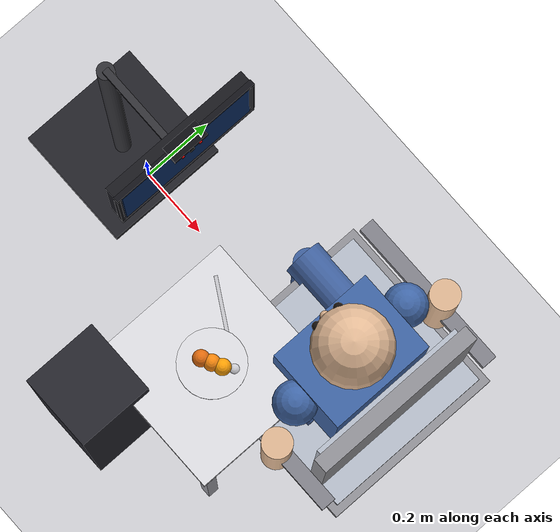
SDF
<?xml version="1.0" ?>

<sdf version="1.9">
<world name="point_goal_scene">

  <!-- ════════════════════ PHYSICS ════════════════════ -->
  <physics name="default_physics" default="true" type="ode">
    <max_step_size>0.01</max_step_size>
    <real_time_factor>1.0</real_time_factor>
    <real_time_update_rate>100</real_time_update_rate>
    <ode>
      <solver><type>quick</type><iters>50</iters><sor>1.3</sor></solver>
      <constraints>
        <cfm>0.0</cfm><erp>0.2</erp>
        <contact_max_correcting_vel>100</contact_max_correcting_vel>
        <contact_surface_layer>0.001</contact_surface_layer>
      </constraints>
    </ode>
  </physics>

  <!-- ════════════════════ PLUGINS ════════════════════ -->
  <plugin filename="gz-sim-physics-system"   name="gz::sim::systems::Physics"/>
  <plugin filename="gz-sim-sensors-system"   name="gz::sim::systems::Sensors">
    <render_engine>ogre2</render_engine>
  </plugin>
  <plugin filename="gz-sim-scene-broadcaster-system" name="gz::sim::systems::SceneBroadcaster"/>
  <plugin filename="gz-sim-user-commands-system"     name="gz::sim::systems::UserCommands"/>

  <!-- ════════════════════ LIGHTING ════════════════════ -->
  <light type="directional" name="ceiling_main">
    <cast_shadows>false</cast_shadows>
    <pose>0.4 0 4.0 0 0 0</pose>
    <diffuse>0.90 0.92 0.92 1</diffuse>
    <specular>0.22 0.22 0.22 1</specular>
    <direction>0.05 0.0 -1.0</direction>
    <intensity>1.10</intensity>
  </light>

  <!-- Fill: patient-side (arm side now -Y) -->
  <light type="point" name="patient_fill">
    <pose>0.80 -0.30 2.2 0 0 0</pose>
    <diffuse>0.55 0.55 0.58 1</diffuse>
    <specular>0.04 0.04 0.04 1</specular>
    <attenuation>
      <range>5</range><constant>0.45</constant>
      <linear>0.04</linear><quadratic>0.002</quadratic>
    </attenuation>
    <cast_shadows>false</cast_shadows>
  </light>

  <!-- Fill: arm + food tray area -->
  <light type="point" name="arm_fill">
    <pose>0.50 -0.60 2.0 0 0 0</pose>
    <diffuse>0.40 0.42 0.42 1</diffuse>
    <specular>0.03 0.03 0.03 1</specular>
    <attenuation>
      <range>4</range><constant>0.55</constant>
      <linear>0.05</linear><quadratic>0.002</quadratic>
    </attenuation>
    <cast_shadows>false</cast_shadows>
  </light>

  <!-- ════════════════════ GROUND ════════════════════ -->
  <model name="ground_plane">
    <static>true</static>
    <link name="link">
      <collision name="collision">
        <geometry><plane><normal>0 0 1</normal><size>20 20</size></plane></geometry>
        <surface><friction><ode><mu>1.0</mu><mu2>1.0</mu2></ode></friction></surface>
      </collision>
      <visual name="visual">
        <geometry><plane><normal>0 0 1</normal><size>20 20</size></plane></geometry>
        <material>
          <ambient>0.82 0.82 0.84 1</ambient>
          <diffuse>0.82 0.82 0.84 1</diffuse>
        </material>
      </visual>
    </link>
  </model>

  <model name="robot_pedestal">
    <static>true</static>
    <pose>0.40 -0.50 0 0 0 0</pose>
    <link name="link">
      <pose>0 0 0.425 0 0 0</pose>
      <collision name="collision">
        <geometry><box><size>0.20 0.20 0.85</size></box></geometry>
      </collision>
      <visual name="visual">
        <geometry><box><size>0.20 0.20 0.85</size></box></geometry>
        <material>
          <ambient>0.15 0.15 0.18 1</ambient>
          <diffuse>0.15 0.15 0.18 1</diffuse>
          <specular>0.12 0.12 0.12 1</specular>
        </material>
      </visual>
    </link>
  </model>

  <!-- ════════════════════════════════════════════════════════════════
       PATIENT CHAIR  at (0.75, 0)  — unchanged
       ════════════════════════════════════════════════════════════════ -->
  <model name="patient_chair">
    <static>true</static>
    <pose>0.75 0 0 0 0 0</pose>
    <link name="link">

      <collision name="seat_col">
        <pose>0 0 0.44 0 0 0</pose>
        <geometry><box><size>0.50 0.50 0.040</size></box></geometry>
      </collision>
      <visual name="seat_frame">
        <pose>0 0 0.44 0 0 0</pose>
        <geometry><box><size>0.50 0.50 0.040</size></box></geometry>
        <material><ambient>0.58 0.58 0.60 1</ambient><diffuse>0.58 0.58 0.60 1</diffuse><specular>0.06 0.06 0.06 1</specular></material>
      </visual>
      <visual name="seat_cushion">
        <pose>0 0 0.472 0 0 0</pose>
        <geometry><box><size>0.46 0.46 0.024</size></box></geometry>
        <material><ambient>0.72 0.75 0.80 1</ambient><diffuse>0.72 0.75 0.80 1</diffuse></material>
      </visual>
      <collision name="backrest_col">
        <pose>0.15 0 0.70 0 0 0</pose>
        <geometry><box><size>0.040 0.46 0.54</size></box></geometry>
      </collision>
      <visual name="backrest_frame">
        <pose>0.15 0 0.70 0 0 0</pose>
        <geometry><box><size>0.040 0.46 0.54</size></box></geometry>
        <material><ambient>0.58 0.58 0.60 1</ambient><diffuse>0.58 0.58 0.60 1</diffuse></material>
      </visual>
      <visual name="backrest_cushion">
        <pose>0.128 0 0.70 0 0 0</pose>
        <geometry><box><size>0.020 0.42 0.50</size></box></geometry>
        <material><ambient>0.72 0.75 0.80 1</ambient><diffuse>0.72 0.75 0.80 1</diffuse></material>
      </visual>
      <visual name="armrest_left">
        <pose>0 0.255 0.645 0 0 0</pose>
        <geometry><box><size>0.44 0.040 0.028</size></box></geometry>
        <material><ambient>0.52 0.52 0.55 1</ambient><diffuse>0.52 0.52 0.55 1</diffuse></material>
      </visual>
      <visual name="armrest_right">
        <pose>0 -0.255 0.645 0 0 0</pose>
        <geometry><box><size>0.44 0.040 0.028</size></box></geometry>
        <material><ambient>0.52 0.52 0.55 1</ambient><diffuse>0.52 0.52 0.55 1</diffuse></material>
      </visual>
      <visual name="leg_fl"><pose>-0.20  0.20 0.215 0 0 0</pose><geometry><cylinder><radius>0.018</radius><length>0.43</length></cylinder></geometry><material><ambient>0.60 0.62 0.62 1</ambient><diffuse>0.60 0.62 0.62 1</diffuse><specular>0.30 0.30 0.30 1</specular></material></visual>
      <visual name="leg_fr"><pose>-0.20 -0.20 0.215 0 0 0</pose><geometry><cylinder><radius>0.018</radius><length>0.43</length></cylinder></geometry><material><ambient>0.60 0.62 0.62 1</ambient><diffuse>0.60 0.62 0.62 1</diffuse><specular>0.30 0.30 0.30 1</specular></material></visual>
      <visual name="leg_bl"><pose> 0.20  0.20 0.215 0 0 0</pose><geometry><cylinder><radius>0.018</radius><length>0.43</length></cylinder></geometry><material><ambient>0.60 0.62 0.62 1</ambient><diffuse>0.60 0.62 0.62 1</diffuse><specular>0.30 0.30 0.30 1</specular></material></visual>
      <visual name="leg_br"><pose> 0.20 -0.20 0.215 0 0 0</pose><geometry><cylinder><radius>0.018</radius><length>0.43</length></cylinder></geometry><material><ambient>0.60 0.62 0.62 1</ambient><diffuse>0.60 0.62 0.62 1</diffuse><specular>0.30 0.30 0.30 1</specular></material></visual>

    </link>
  </model>

  <model name="patient">
    <static>true</static>
    <pose>0.75 0 0 0 0 0</pose>
    <link name="link">

      <visual name="thigh_left"><pose>-0.12  0.11 0.46 0 1.5708 0</pose><geometry><cylinder><radius>0.052</radius><length>0.32</length></cylinder></geometry><material><ambient>0.25 0.38 0.62 1</ambient><diffuse>0.25 0.38 0.62 1</diffuse></material></visual>
      <visual name="thigh_right"><pose>-0.12 -0.11 0.46 0 1.5708 0</pose><geometry><cylinder><radius>0.052</radius><length>0.32</length></cylinder></geometry><material><ambient>0.25 0.38 0.62 1</ambient><diffuse>0.25 0.38 0.62 1</diffuse></material></visual>
      <visual name="shin_left"><pose>-0.26  0.11 0.25 0 0 0</pose><geometry><cylinder><radius>0.038</radius><length>0.42</length></cylinder></geometry><material><ambient>0.25 0.38 0.62 1</ambient><diffuse>0.25 0.38 0.62 1</diffuse></material></visual>
      <visual name="shin_right"><pose>-0.26 -0.11 0.25 0 0 0</pose><geometry><cylinder><radius>0.038</radius><length>0.42</length></cylinder></geometry><material><ambient>0.25 0.38 0.62 1</ambient><diffuse>0.25 0.38 0.62 1</diffuse></material></visual>

      <visual name="torso">
        <pose>0 0 0.74 0 0 0</pose>
        <geometry><box><size>0.22 0.28 0.40</size></box></geometry>
        <material><ambient>0.25 0.40 0.65 1</ambient><diffuse>0.25 0.40 0.65 1</diffuse></material>
      </visual>
      <visual name="shoulder_l"><pose>0  0.17 0.88 0 0 0</pose><geometry><sphere><radius>0.054</radius></sphere></geometry><material><ambient>0.25 0.40 0.65 1</ambient><diffuse>0.25 0.40 0.65 1</diffuse></material></visual>
      <visual name="shoulder_r"><pose>0 -0.17 0.88 0 0 0</pose><geometry><sphere><radius>0.054</radius></sphere></geometry><material><ambient>0.25 0.40 0.65 1</ambient><diffuse>0.25 0.40 0.65 1</diffuse></material></visual>
      <visual name="arm_left"><pose>0.04  0.26 0.66 0 0 0</pose><geometry><cylinder><radius>0.038</radius><length>0.36</length></cylinder></geometry><material><ambient>0.88 0.72 0.58 1</ambient><diffuse>0.88 0.72 0.58 1</diffuse></material></visual>
      <visual name="arm_right"><pose>0.04 -0.26 0.66 0 0 0</pose><geometry><cylinder><radius>0.038</radius><length>0.36</length></cylinder></geometry><material><ambient>0.88 0.72 0.58 1</ambient><diffuse>0.88 0.72 0.58 1</diffuse></material></visual>

      <visual name="neck">
        <pose>0 0 0.965 0 0 0</pose>
        <geometry><cylinder><radius>0.030</radius><length>0.055</length></cylinder></geometry>
        <material><ambient>0.88 0.72 0.58 1</ambient><diffuse>0.88 0.72 0.58 1</diffuse></material>
      </visual>
      <visual name="head">
        <pose>0 0 1.040 0 0 0</pose>
        <geometry><sphere><radius>0.098</radius></sphere></geometry>
        <material><ambient>0.88 0.72 0.58 1</ambient><diffuse>0.88 0.72 0.58 1</diffuse><specular>0.06 0.04 0.03 1</specular></material>
      </visual>
      <visual name="eye_left"><pose>-0.086  0.032 1.058 0 0 0</pose><geometry><sphere><radius>0.012</radius></sphere></geometry><material><ambient>0.08 0.06 0.05 1</ambient><diffuse>0.08 0.06 0.05 1</diffuse></material></visual>
      <visual name="eye_right"><pose>-0.086 -0.032 1.058 0 0 0</pose><geometry><sphere><radius>0.012</radius></sphere></geometry><material><ambient>0.08 0.06 0.05 1</ambient><diffuse>0.08 0.06 0.05 1</diffuse></material></visual>
      <visual name="nose"><pose>-0.094 0 1.030 0 0 0</pose><geometry><sphere><radius>0.012</radius></sphere></geometry><material><ambient>0.84 0.68 0.54 1</ambient><diffuse>0.84 0.68 0.54 1</diffuse></material></visual>

      <visual name="mouth_target">
        <pose>-0.09 0 0.990 0 0 0</pose>
        <geometry><sphere><radius>0.014</radius></sphere></geometry>
        <material>
          <ambient>0.90 0.10 0.08 1</ambient>
          <diffuse>0.90 0.10 0.08 1</diffuse>
          <specular>0.12 0.02 0.01 1</specular>
          <emissive>0.30 0.02 0.01 1</emissive>
        </material>
      </visual>

    </link>
  </model>

  <model name="food_side_table">
    <static>true</static>
    <pose>0.55 -0.25 0 0 0 0</pose>
    <link name="link">

      <collision name="top_col">
        <pose>0 0 0.765 0 0 0</pose>
        <geometry><box><size>0.40 0.40 0.030</size></box></geometry>
        <surface><friction><ode><mu>0.8</mu><mu2>0.8</mu2></ode></friction></surface>
      </collision>
      <visual name="tabletop">
        <pose>0 0 0.765 0 0 0</pose>
        <geometry><box><size>0.40 0.40 0.030</size></box></geometry>
        <material><ambient>0.88 0.88 0.90 1</ambient><diffuse>0.88 0.88 0.90 1</diffuse><specular>0.18 0.18 0.18 1</specular></material>
      </visual>
      <visual name="edge_strip">
        <pose>0 0 0.747 0 0 0</pose>
        <geometry><box><size>0.40 0.40 0.006</size></box></geometry>
        <material><ambient>0.70 0.70 0.72 1</ambient><diffuse>0.70 0.70 0.72 1</diffuse></material>
      </visual>
      <visual name="leg_fl"><pose> 0.17  0.17 0.375 0 0 0</pose><geometry><box><size>0.030 0.030 0.750</size></box></geometry><material><ambient>0.62 0.62 0.65 1</ambient><diffuse>0.62 0.62 0.65 1</diffuse></material></visual>
      <visual name="leg_fr"><pose> 0.17 -0.17 0.375 0 0 0</pose><geometry><box><size>0.030 0.030 0.750</size></box></geometry><material><ambient>0.62 0.62 0.65 1</ambient><diffuse>0.62 0.62 0.65 1</diffuse></material></visual>
      <visual name="leg_bl"><pose>-0.17  0.17 0.375 0 0 0</pose><geometry><box><size>0.030 0.030 0.750</size></box></geometry><material><ambient>0.62 0.62 0.65 1</ambient><diffuse>0.62 0.62 0.65 1</diffuse></material></visual>
      <visual name="leg_br"><pose>-0.17 -0.17 0.375 0 0 0</pose><geometry><box><size>0.030 0.030 0.750</size></box></geometry><material><ambient>0.62 0.62 0.65 1</ambient><diffuse>0.62 0.62 0.65 1</diffuse></material></visual>

    </link>
  </model>

  <!-- ════════════════════════════════════════════════════════════════
       FOOD BOWL  at world (0.55, -0.25, 0.793)
       ════════════════════════════════════════════════════════════════ -->
  <model name="food_bowl">
    <static>true</static>
    <pose>0.55 -0.25 0.793 0 0 0</pose>
    <link name="link">
      <collision name="col">
        <geometry><cylinder><radius>0.080</radius><length>0.038</length></cylinder></geometry>
        <surface><friction><ode><mu>0.6</mu><mu2>0.6</mu2></ode></friction></surface>
      </collision>
      <visual name="bowl_body">
        <geometry><cylinder><radius>0.080</radius><length>0.038</length></cylinder></geometry>
        <material><ambient>0.94 0.94 0.96 1</ambient><diffuse>0.94 0.94 0.96 1</diffuse><specular>0.45 0.45 0.45 1</specular></material>
      </visual>
      <visual name="bowl_rim">
        <pose>0 0 0.019 0 0 0</pose>
        <geometry><cylinder><radius>0.084</radius><length>0.005</length></cylinder></geometry>
        <material><ambient>0.88 0.88 0.90 1</ambient><diffuse>0.88 0.88 0.90 1</diffuse><specular>0.50 0.50 0.50 1</specular></material>
      </visual>
      <visual name="bowl_band">
        <pose>0 0 0.008 0 0 0</pose>
        <geometry><cylinder><radius>0.081</radius><length>0.006</length></cylinder></geometry>
        <material><ambient>0.20 0.40 0.75 1</ambient><diffuse>0.20 0.40 0.75 1</diffuse></material>
      </visual>
    </link>
  </model>

  <model name="food_item_1">
    <pose>0.550 -0.250 0.834 0 0 0</pose>
    <link name="link">
      <inertial><mass>0.038</mass><inertia><ixx>7.8e-6</ixx><ixy>0</ixy><ixz>0</ixz><iyy>7.8e-6</iyy><iyz>0</iyz><izz>7.8e-6</izz></inertia></inertial>
      <collision name="col"><geometry><sphere><radius>0.021</radius></sphere></geometry><surface><friction><ode><mu>0.90</mu><mu2>0.90</mu2></ode></friction><contact><ode><kp>1e5</kp><kd>1.0</kd></ode></contact></surface></collision>
      <visual name="vis"><geometry><sphere><radius>0.021</radius></sphere></geometry><material><ambient>0.95 0.52 0.05 1</ambient><diffuse>0.95 0.52 0.05 1</diffuse><specular>0.12 0.05 0.00 1</specular></material></visual>
    </link>
  </model>
  <model name="food_item_2">
    <pose>0.526 -0.262 0.834 0 0 0</pose>
    <link name="link">
      <inertial><mass>0.038</mass><inertia><ixx>7.8e-6</ixx><ixy>0</ixy><ixz>0</ixz><iyy>7.8e-6</iyy><iyz>0</iyz><izz>7.8e-6</izz></inertia></inertial>
      <collision name="col"><geometry><sphere><radius>0.021</radius></sphere></geometry><surface><friction><ode><mu>0.90</mu><mu2>0.90</mu2></ode></friction><contact><ode><kp>1e5</kp><kd>1.0</kd></ode></contact></surface></collision>
      <visual name="vis"><geometry><sphere><radius>0.021</radius></sphere></geometry><material><ambient>0.88 0.42 0.06 1</ambient><diffuse>0.88 0.42 0.06 1</diffuse><specular>0.12 0.05 0.00 1</specular></material></visual>
    </link>
  </model>
  <model name="food_item_3">
    <pose>0.574 -0.238 0.834 0 0 0</pose>
    <link name="link">
      <inertial><mass>0.038</mass><inertia><ixx>7.8e-6</ixx><ixy>0</ixy><ixz>0</ixz><iyy>7.8e-6</iyy><iyz>0</iyz><izz>7.8e-6</izz></inertia></inertial>
      <collision name="col"><geometry><sphere><radius>0.021</radius></sphere></geometry><surface><friction><ode><mu>0.90</mu><mu2>0.90</mu2></ode></friction><contact><ode><kp>1e5</kp><kd>1.0</kd></ode></contact></surface></collision>
      <visual name="vis"><geometry><sphere><radius>0.021</radius></sphere></geometry><material><ambient>0.98 0.62 0.02 1</ambient><diffuse>0.98 0.62 0.02 1</diffuse><specular>0.12 0.05 0.00 1</specular></material></visual>
    </link>
  </model>

  <!-- ════════════════════════════════════════════════════════════════
       SPOON  — near food bowl on side table
       ════════════════════════════════════════════════════════════════ -->
  <model name="spoon">
    <static>true</static>
    <pose>0.535 -0.185 0.800 0 0 -0.524</pose>
    <link name="link">
      <visual name="handle">
        <pose>-0.076 0 0 0 0 0</pose>
        <geometry><box><size>0.160 0.009 0.004</size></box></geometry>
        <material><ambient>0.78 0.78 0.80 1</ambient><diffuse>0.78 0.78 0.80 1</diffuse><specular>0.55 0.55 0.55 1</specular></material>
      </visual>
      <visual name="neck">
        <pose>0.046 0 0 0 0 0</pose>
        <geometry><box><size>0.030 0.007 0.003</size></box></geometry>
        <material><ambient>0.78 0.78 0.80 1</ambient><diffuse>0.78 0.78 0.80 1</diffuse><specular>0.55 0.55 0.55 1</specular></material>
      </visual>
      <visual name="spoon_bowl">
        <pose>0.068 0 0.003 0 0 0</pose>
        <geometry><sphere><radius>0.017</radius></sphere></geometry>
        <material><ambient>0.78 0.78 0.80 1</ambient><diffuse>0.78 0.78 0.80 1</diffuse><specular>0.60 0.60 0.60 1</specular></material>
      </visual>
      <collision name="spoon_col">
        <pose>-0.076 0 0 0 0 0</pose>
        <geometry><box><size>0.220 0.020 0.008</size></box></geometry>
      </collision>
    </link>
  </model>

  <model name="patient_monitor">
    <static>true</static>
    <pose>-0.10 0.0 0 0 0 0</pose>
    <link name="monitor_link">

      <!-- Stand base -->
      <collision name="base_col">
        <pose>0 0 0.018 0 0 0</pose>
        <geometry><box><size>0.35 0.35 0.036</size></box></geometry>
      </collision>
      <visual name="stand_base">
        <pose>0 0 0.018 0 0 0</pose>
        <geometry><box><size>0.35 0.35 0.036</size></box></geometry>
        <material><ambient>0.14 0.14 0.16 1</ambient><diffuse>0.14 0.14 0.16 1</diffuse><specular>0.12 0.12 0.12 1</specular></material>
      </visual>

      <!-- Vertical pole -->
      <collision name="pole_col">
        <pose>0 0 0.50 0 0 0</pose>
        <geometry><cylinder><radius>0.022</radius><length>1.00</length></cylinder></geometry>
      </collision>
      <visual name="stand_pole">
        <pose>0 0 0.50 0 0 0</pose>
        <geometry><cylinder><radius>0.022</radius><length>1.00</length></cylinder></geometry>
        <material><ambient>0.20 0.20 0.22 1</ambient><diffuse>0.20 0.20 0.22 1</diffuse><specular>0.18 0.18 0.18 1</specular></material>
      </visual>

      <!-- Horizontal arm toward patient (+X) -->
      <visual name="arm_h">
        <pose>0.115 0 1.010 0 0 0</pose>
        <geometry><box><size>0.230 0.018 0.016</size></box></geometry>
        <material><ambient>0.20 0.20 0.22 1</ambient><diffuse>0.20 0.20 0.22 1</diffuse></material>
      </visual>
      <visual name="vesa_mount">
        <pose>0.240 0 1.010 0 0 0</pose>
        <geometry><box><size>0.028 0.065 0.065</size></box></geometry>
        <material><ambient>0.20 0.20 0.22 1</ambient><diffuse>0.20 0.20 0.22 1</diffuse></material>
      </visual>

      <!-- Monitor housing -->
      <collision name="monitor_col">
        <pose>0.265 0 1.130 0 0 0</pose>
        <geometry><box><size>0.038 0.395 0.280</size></box></geometry>
      </collision>
      <visual name="monitor_housing">
        <pose>0.265 0 1.130 0 0 0</pose>
        <geometry><box><size>0.038 0.395 0.280</size></box></geometry>
        <material><ambient>0.10 0.10 0.12 1</ambient><diffuse>0.10 0.10 0.12 1</diffuse><specular>0.06 0.06 0.06 1</specular></material>
      </visual>

      <!-- Screen face (emissive) -->
      <visual name="screen_face">
        <pose>0.286 0 1.130 0 0 0</pose>
        <geometry><box><size>0.004 0.370 0.255</size></box></geometry>
        <material>
          <ambient>0.05 0.18 0.40 1</ambient>
          <diffuse>0.05 0.18 0.40 1</diffuse>
          <specular>0.85 0.85 0.85 1</specular>
          <emissive>0.03 0.12 0.28 1</emissive>
        </material>
      </visual>

      <!-- Bezels -->
      <visual name="bezel_top">   <pose>0.282 0  1.274 0 0 0</pose><geometry><box><size>0.014 0.398 0.016</size></box></geometry><material><ambient>0.08 0.08 0.10 1</ambient><diffuse>0.08 0.08 0.10 1</diffuse></material></visual>
      <visual name="bezel_bottom"><pose>0.282 0  0.984 0 0 0</pose><geometry><box><size>0.014 0.398 0.016</size></box></geometry><material><ambient>0.08 0.08 0.10 1</ambient><diffuse>0.08 0.08 0.10 1</diffuse></material></visual>
      <visual name="bezel_left">  <pose>0.282  0.196 1.130 0 0 0</pose><geometry><box><size>0.014 0.008 0.260</size></box></geometry><material><ambient>0.08 0.08 0.10 1</ambient><diffuse>0.08 0.08 0.10 1</diffuse></material></visual>
      <visual name="bezel_right"> <pose>0.282 -0.196 1.130 0 0 0</pose><geometry><box><size>0.014 0.008 0.260</size></box></geometry><material><ambient>0.08 0.08 0.10 1</ambient><diffuse>0.08 0.08 0.10 1</diffuse></material></visual>

      <!-- Camera housing on bezel top -->
      <visual name="camera_housing">
        <pose>0.286 0 1.283 0 0 0</pose>
        <geometry><box><size>0.042 0.096 0.020</size></box></geometry>
        <material><ambient>0.06 0.06 0.08 1</ambient><diffuse>0.06 0.06 0.08 1</diffuse></material>
      </visual>
      <visual name="camera_lens">
        <pose>0.309 0 1.283 0 1.5708 0</pose>
        <geometry><cylinder><radius>0.007</radius><length>0.005</length></cylinder></geometry>
        <material><ambient>0.01 0.01 0.01 1</ambient><diffuse>0.01 0.01 0.01 1</diffuse><specular>0.90 0.90 0.90 1</specular></material>
      </visual>
      <visual name="ir_dot_l">
        <pose>0.309  0.025 1.283 0 1.5708 0</pose>
        <geometry><cylinder><radius>0.004</radius><length>0.003</length></cylinder></geometry>
        <material><ambient>0.80 0.02 0.02 1</ambient><diffuse>0.80 0.02 0.02 1</diffuse><emissive>0.40 0.00 0.00 1</emissive></material>
      </visual>
      <visual name="ir_dot_r">
        <pose>0.309 -0.025 1.283 0 1.5708 0</pose>
        <geometry><cylinder><radius>0.004</radius><length>0.003</length></cylinder></geometry>
        <material><ambient>0.80 0.02 0.02 1</ambient><diffuse>0.80 0.02 0.02 1</diffuse><emissive>0.40 0.00 0.00 1</emissive></material>
      </visual>

      <sensor name="camera_mouth_rgbd" type="rgbd_camera">
        <pose>0.25 0 1.30 0 0.409 0</pose>
        <always_on>true</always_on>
        <update_rate>15</update_rate>
        <visualize>false</visualize>
        <camera name="camera_mouth">
          <horizontal_fov>1.047196</horizontal_fov>   <!-- 60 deg FOV -->
          <image>
            <width>640</width>
            <height>480</height>
            <format>R8G8B8</format>
          </image>
          <clip>
            <near>0.10</near>
            <far>4.0</far>
          </clip>
          <noise>
            <type>gaussian</type>
            <mean>0.0</mean>
            <stddev>0.004</stddev>
          </noise>
        </camera>
        <!-- Base topic prefix — Gazebo appends /image, /depth_image,
             /points, /camera_info automatically for rgbd_camera.        -->
        <topic>/camera_mouth</topic>
        <gz_frame_id>camera_mouth_optical_frame</gz_frame_id>
      </sensor>

    </link>
  </model>

</world>
</sdf>
